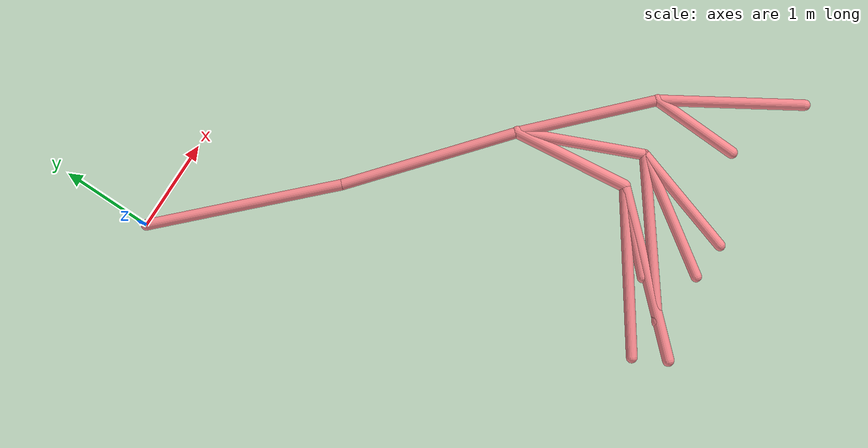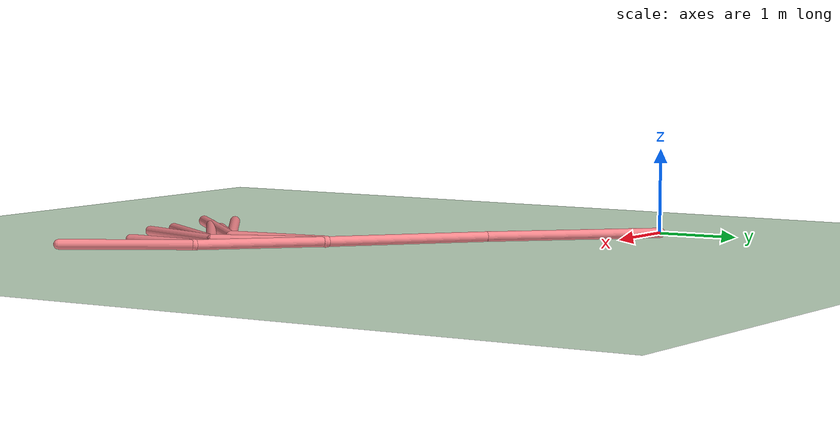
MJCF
<mujoco model="swimmer">
  <compiler angle="degree" coordinate="global" inertiafromgeom="true"/>
  <option collision="predefined" density="4000" integrator="RK4" timestep="0.01" viscosity="0.1"/>
  <default>
    <geom conaffinity="1" condim="1" contype="1" margin="0.001" rgba=".98 .54 .56 1."/>
    <joint armature="0.1"/>
  </default>
  <visual>
    <headlight ambient=".1 .1 .1" diffuse=".6 .6 .6" specular="0.3 0.3 0.3"/>
    <map znear=".01"/>
    <quality shadowsize="16384"/>
  </visual>
  <worldbody>
    <light cutoff="100" diffuse="1 1 1" dir="-1 0 -1.3" directional="true" exponent="1" pos="1 0 1.3" specular=".1 .1 .1" castshadow="true"/>
    <geom conaffinity="1" condim="3" name="floor" pos="0 0 -0.1" rgba="0.8 0.9 0.8 1" size="40 40 0.1" type="plane" material="grid_new"/>
    <body name="0" pos="0 0 0">
      <camera name="track" mode="trackcom" pos="0 -3 3" xyaxes="1 0 0 0 1 1"/>
      <joint axis="1 0 0" name="slider1" pos="0 0 0" type="slide"/>
      <joint axis="0 1 0" name="slider2" pos="0 0 0" type="slide"/>
      <joint axis="0 0 1" name="0_joint" pos="0 0 0" type="hinge"/>
      <geom density="1000" fromto="-0.000111 0.000111 0 1.499367 -1.49917 0" size="0.060041" type="capsule"/>
      <body name="1" pos="1.499367 -1.49917 0">
        <joint axis="0 0 1" limited="true" name="1_joint" pos="1.499367 -1.49917 0" range="-100 100" type="hinge"/>
        <geom density="1000" fromto="1.499357 -1.499161 0 2.998565 -2.756813 0" size="0.060022" type="capsule"/>
        <body name="11" pos="2.998565 -2.756813 0">
          <joint axis="0 0 1" limited="true" name="11_joint" pos="2.998565 -2.756813 0" range="-100 100" type="hinge"/>
          <geom density="1000" fromto="2.998564 -2.756808 0 3.144866 -4.020812 0" size="0.067869" type="capsule"/>
          <body name="111" pos="3.144866 -4.020812 0">
            <joint axis="0 0 1" limited="true" name="111_joint" pos="3.144866 -4.020812 0" range="-100 100" type="hinge"/>
            <geom density="1000" fromto="3.145667 -4.020239 0 1.659499 -5.0844 0" size="0.061013" type="capsule"/>
          </body>
          <body name="211" pos="3.144866 -4.020812 0">
            <joint axis="0 0 1" limited="true" name="211_joint" pos="3.144866 -4.020812 0" range="-100 100" type="hinge"/>
            <geom density="1000" fromto="3.144881 -4.020797 0 2.434698 -4.714915 0" size="0.060357" type="capsule"/>
          </body>
          <body name="311" pos="3.144866 -4.020812 0">
            <joint axis="0 0 1" limited="true" name="311_joint" pos="3.144866 -4.020812 0" range="-100 100" type="hinge"/>
            <geom density="1000" fromto="3.144868 -4.02081 0 1.84567 -5.426273 0" size="0.064594" type="capsule"/>
          </body>
        </body>
        <body name="21" pos="2.998565 -2.756813 0">
          <joint axis="0 0 1" limited="true" name="21_joint" pos="2.998565 -2.756813 0" range="-100 100" type="hinge"/>
          <geom density="1000" fromto="2.998533 -2.756741 0 3.541338 -4.01841 0" size="0.060572" type="capsule"/>
          <body name="121" pos="3.541338 -4.01841 0">
            <joint axis="0 0 1" limited="true" name="121_joint" pos="3.541338 -4.01841 0" range="-100 100" type="hinge"/>
            <geom density="1000" fromto="3.541345 -4.018405 0 2.121963 -5.105319 0" size="0.060772" type="capsule"/>
          </body>
          <body name="221" pos="3.541338 -4.01841 0">
            <joint axis="0 0 1" limited="true" name="221_joint" pos="3.541338 -4.01841 0" range="-100 100" type="hinge"/>
            <geom density="1000" fromto="3.541471 -4.018212 0 2.755518 -5.186885 0" size="0.060235" type="capsule"/>
          </body>
          <body name="321" pos="3.541338 -4.01841 0">
            <joint axis="0 0 1" limited="true" name="321_joint" pos="3.541338 -4.01841 0" range="-100 100" type="hinge"/>
            <geom density="1000" fromto="3.541338 -4.018409 0 3.171194 -5.215648 0" size="0.060141" type="capsule"/>
          </body>
        </body>
        <body name="31" pos="2.998565 -2.756813 0">
          <joint axis="0 0 1" limited="true" name="31_joint" pos="2.998565 -2.756813 0" range="-100 100" type="hinge"/>
          <geom density="1000" fromto="2.998552 -2.756801 0 4.10565 -3.816426 0" size="0.060067" type="capsule"/>
          <body name="131" pos="4.10565 -3.816426 0">
            <joint axis="0 0 1" limited="true" name="131_joint" pos="4.10565 -3.816426 0" range="-100 100" type="hinge"/>
            <geom density="1000" fromto="4.105646 -3.81642 0 4.924722 -5.15483 0" size="0.06001" type="capsule"/>
          </body>
          <body name="231" pos="4.10565 -3.816426 0">
            <joint axis="0 0 1" limited="true" name="231_joint" pos="4.10565 -3.816426 0" range="-100 100" type="hinge"/>
            <geom density="1000" fromto="4.105655 -3.81628 0 4.070269 -4.781001 0" size="0.064343" type="capsule"/>
          </body>
        </body>
      </body>
    </body>
  </worldbody>
  <actuator>
    <motor ctrllimited="true" ctrlrange="-1 1" gear="299.926243" joint="1_joint" name="1_joint"/>
    <motor ctrllimited="true" ctrlrange="-1 1" gear="234.083091" joint="11_joint" name="11_joint"/>
    <motor ctrllimited="true" ctrlrange="-1 1" gear="248.437321" joint="21_joint" name="21_joint"/>
    <motor ctrllimited="true" ctrlrange="-1 1" gear="216.459348" joint="111_joint" name="111_joint"/>
    <motor ctrllimited="true" ctrlrange="-1 1" gear="275.753528" joint="31_joint" name="31_joint"/>
    <motor ctrllimited="true" ctrlrange="-1 1" gear="269.074517" joint="211_joint" name="211_joint"/>
    <motor ctrllimited="true" ctrlrange="-1 1" gear="241.766669" joint="121_joint" name="121_joint"/>
    <motor ctrllimited="true" ctrlrange="-1 1" gear="248.186306" joint="311_joint" name="311_joint"/>
    <motor ctrllimited="true" ctrlrange="-1 1" gear="260.310224" joint="221_joint" name="221_joint"/>
    <motor ctrllimited="true" ctrlrange="-1 1" gear="255.119792" joint="131_joint" name="131_joint"/>
    <motor ctrllimited="true" ctrlrange="-1 1" gear="200.430775" joint="321_joint" name="321_joint"/>
    <motor ctrllimited="true" ctrlrange="-1 1" gear="174.627488" joint="231_joint" name="231_joint"/>
  </actuator>
  <asset>
    <texture type="skybox" builtin="gradient" rgb1=".4 .5 .6" rgb2="0 0 0" width="100" height="100"/>
    <texture builtin="flat" height="1278" mark="cross" markrgb="1 1 1" name="texgeom" random="0.01" rgb1="0.8 0.6 0.4" rgb2="0.8 0.6 0.4" type="cube" width="127"/>
    <texture builtin="checker" height="100" name="texplane" rgb1="0 0 0" rgb2="0.8 0.8 0.8" type="2d" width="100"/>
    <material name="MatPlane" reflectance="0.5" shininess="1" specular="1" texrepeat="60 60" texture="texplane"/>
    <material name="geom" texture="texgeom" texuniform="true"/>
    <texture name="grid_new" type="2d" builtin="checker" rgb1=".1 .3 .2" rgb2=".2 .4 .3" width="1000" height="1000" mark="none" markrgb=".8 .6 .4"/>
    <material name="grid_new" texture="grid_new" texrepeat="0.2 0.2" texuniform="true" reflectance=".2"/>
  </asset>
</mujoco>
